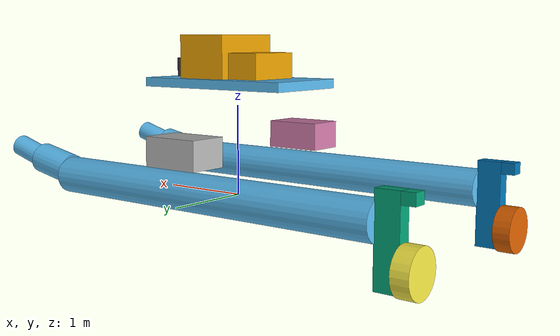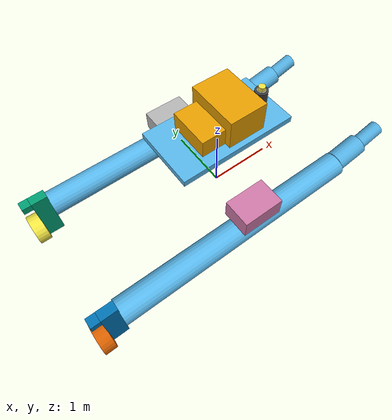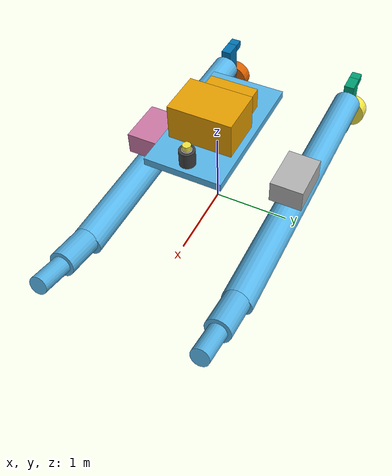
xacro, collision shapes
<?xml version='1.0' encoding='utf-8'?>
<robot name="wamv" xmlns:xacro="http://ros.org/wiki/xacro">

  <xacro:property name="user_path" value="file:///home/gelatocotonato/LabMec2025/src/wamv_gazebo/urdf/meshes"/>

  <!-- BASE FOOTPRINT -->
  <link name="base_footprint" />

  <!-- BASE LINK -->
  <link name="base_link">
    <inertial>
      <origin xyz="0 0 0" rpy="0 0 0" />
      <mass value="180.0" />
      <inertia ixx="120.0" ixy="0.0" ixz="0.0" iyy="393.0" iyz="0.0" izz="446.0" />
    </inertial>

    <visual>
      <origin xyz="0 0 0" rpy="0 0 0" />
      <geometry>
        <mesh filename="${user_path}/wamv/WAM-V-Base.dae" />
      </geometry>
    </visual>

    <collision>
      <origin xyz="0 0 1.25" rpy="0 0 0" />
      <geometry>
        <box size="1.85 1 0.1" />
      </geometry>
    </collision>

    <collision>
      <origin xyz="-0.4 1.03 0.2" rpy="0 1.57 0" />
      <geometry>
        <cylinder length="4" radius="0.2" />
      </geometry>
    </collision>

    <collision>
      <origin xyz="1.85 1.03 0.3" rpy="0 1.38 0" />
      <geometry>
        <cylinder length="0.5" radius="0.17" />
      </geometry>
    </collision>

    <collision>
      <origin xyz="2.3 1.03 0.4" rpy="0 1.3 0" />
      <geometry>
        <cylinder length="0.45" radius="0.12" />
      </geometry>
    </collision>

    <collision>
      <origin xyz="-0.4 -1.03 0.2" rpy="0 1.57 0" />
      <geometry>
        <cylinder length="4" radius="0.2" />
      </geometry>
    </collision>

    <collision>
      <origin xyz="1.85 -1.03 0.3" rpy="0 1.38 0" />
      <geometry>
        <cylinder length="0.5" radius="0.17" />
      </geometry>
    </collision>

    <collision>
      <origin xyz="2.3 -1.03 0.4" rpy="0 1.3 0" />
      <geometry>
        <cylinder length="0.45" radius="0.12" />
      </geometry>
    </collision>
  </link>

  <joint name="base_footprint_joint" type="fixed">
    <parent link="base_footprint" />
    <child link="base_link" />
    <origin xyz="0 0 0" rpy="0 0 0" />
  </joint>

  <!-- WAM-V LEFT PART -->

  <!-- ENGINE -->
  <link name="left_engine_link">

    <inertial>
      <origin xyz="0 0 0" rpy="0 0 0" />
      <mass value="15.0" />
      <inertia ixx="0.889245" ixy="0.0" ixz="0.0" iyy="0.811125" iyz="0.0" izz="0.078125" />
    </inertial>

    <visual>
      <origin xyz="0 0 0" rpy="0 0 0" />
      <geometry>
        <mesh filename="${user_path}/wamv/engine.dae" />
      </geometry>
    </visual>

    <collision>
      <origin xyz="-0.145 0 -0.27" rpy="0 0 0" />
      <geometry>
        <box size="0.25 0.15 0.9" />
      </geometry>
    </collision>

    <collision>
      <origin xyz="-0.34 0 0.12" rpy="0 0 0" />
      <geometry>
        <box size="0.14 0.15 0.12" />
      </geometry>
    </collision>
  </link>

  <joint name="left_chassis_engine_joint" type="revolute">
    <axis xyz="0 0 1" />
    <parent link="base_link" />
    <child link="left_engine_link" />
    <limit effort="10" lower="-1.57" upper="1.57" velocity="10" />
    <origin xyz="-2.373776 1.027135 0.318237" rpy="0 0 0" />
  </joint>

  <!-- PROPELLER -->
  <link name="left_propeller_link">

    <inertial>
      <origin xyz="0 0 0" rpy="0 0 0" />
      <mass value="0.5" />
      <inertia ixx="0.008545" ixy="0.0" ixz="0.0"
               iyy="0.008545" iyz="0.0"
               izz="0.0144" />
    </inertial>

    <visual>
      <origin xyz="0 0 0" rpy="0 0 0" />
      <geometry>
        <mesh filename="${user_path}/wamv/propeller.dae" />
      </geometry>
    </visual>

    <collision>
      <origin xyz="-0.08 0 0" rpy="0 1.57 0" />
      <geometry>
        <cylinder length="0.18" radius="0.24" />
      </geometry>
    </collision>
  </link>

  <joint name="left_engine_propeller_joint" type="revolute">
    <axis xyz="1 0 0" />
    <parent link="left_engine_link" />
    <child link="left_propeller_link" />
    <limit effort="20" lower="-999999" upper="999999" velocity="15" />
    <dynamics damping="0.05" friction="0.05" spring_reference="0" spring_stiffness="0" />
    <origin xyz="-0.278156 0 -0.509371" rpy="0 0 0" />
  </joint>

  <!-- WAM-V RIGHT PART -->

  <!-- ENGINE -->
  <link name="right_engine_link">

    <inertial>
      <origin xyz="0 0 0" rpy="0 0 0" />
      <mass value="15.0" />
      <inertia ixx="0.889245" ixy="0.0" ixz="0.0"
               iyy="0.811125" iyz="0.0"
               izz="0.078125" />
    </inertial>

    <visual>
      <origin xyz="0 0 0" rpy="0 0 0" />
      <geometry>
        <mesh filename="${user_path}/wamv/engine.dae" />
      </geometry>
    </visual>

    <collision>
      <origin xyz="-0.145 0 -0.27" rpy="0 0 0" />
      <geometry>
        <box size="0.25 0.15 0.9" />
      </geometry>
    </collision>

    <collision>
      <origin xyz="-0.34 0 0.12" rpy="0 0 0" />
      <geometry>
        <box size="0.14 0.15 0.12" />
      </geometry>
    </collision>
  </link>

  <joint name="right_chassis_engine_joint" type="revolute">
    <axis xyz="0 0 1" />
    <parent link="base_link" />
    <child link="right_engine_link" />
    <limit effort="10" lower="-1.57" upper="1.57" velocity="2" />
    <origin xyz="-2.373776 -1.027135 0.318237" rpy="0 0 0" />
  </joint>

  <!-- PROPELLER -->
  <link name="right_propeller_link">

    <inertial>
      <origin xyz="0 0 0" rpy="0 0 0"/>
      <mass value="0.5"/>
      <inertia ixx="0.008545" ixy="0.0" ixz="0.0"
               iyy="0.008545" iyz="0.0"
               izz="0.0144"/>
    </inertial>

    <visual>
      <origin xyz="0 0 0" rpy="0 0 0"/>
      <geometry>
        <mesh filename="${user_path}/wamv/propeller.dae"/>
      </geometry>
    </visual>

    <collision>
      <origin xyz="-0.08 0 0" rpy="0 1.57 0"/>
      <geometry>
        <cylinder length="0.18" radius="0.24"/>
      </geometry>
    </collision>
  </link>

  <joint name="right_engine_propeller_joint" type="revolute">
    <axis xyz="1 0 0" />
    <parent link="right_engine_link" />
    <child link="right_propeller_link" />
    <limit effort="20" lower="-999999" upper="999999" velocity="15" />
    <dynamics damping="0.05" friction="0.05" spring_reference="0" spring_stiffness="0" />
    <origin xyz="-0.278156 0 -0.509371" rpy="0 0 0" />
  </joint>

  <!-- WAM-V LOAD -->

  <!-- BATTERIES -->
  <link name="battery_dx_link">

    <inertial>
      <origin xyz="-0.02 0 0.155" rpy="0 0 0"/>
      <mass value="23.5"/>
      <inertia
        ixx="0.5015291666666667" ixy="0" ixz="0"
        iyy="0.8931958333333333" iyz="0"
        izz="1.0183333333333333"/>
    </inertial>

    <visual>
      <origin xyz="0 0 0" rpy="0 0 0" />
      <geometry>
        <mesh filename="${user_path}/battery/battery.dae"/>
      </geometry>
    </visual>

    <collision>
      <origin xyz="-0.02 0 0.155" rpy="0 0 0"/>
      <geometry>
        <box size="0.64 0.44 0.31"/>
      </geometry>
    </collision>
  </link>

  <joint name="battery_dx_joint" type="fixed">
    <parent link="base_link" />
    <child link="battery_dx_link" />
    <origin xyz="-0.13 -1.029 0.448" rpy="0 0 0" />
  </joint>

  <link name="battery_sx_link">

    <inertial>
      <origin xyz="-0.02 0 0.155" rpy="0 0 0"/>
      <mass value="23.5"/>
      <inertia
        ixx="0.50152917"          ixy="0" ixz="0"
        iyy="0.8931958333333333"  iyz="0"
        izz="1.0183333333333333"/>
    </inertial>

    <visual>
      <origin xyz="0 0 0" rpy="0 0 0"/>
      <geometry>
        <mesh filename="${user_path}/battery/battery.dae"/>
      </geometry>
    </visual>

    <collision>
      <origin xyz="-0.02 0 0.155" rpy="0 0 0"/>
      <geometry>
        <box size="0.64 0.44 0.31"/>
      </geometry>
    </collision>
  </link>

  <joint name="battery_sx_joint" type="fixed">
    <parent link="base_link" />
    <child link="battery_sx_link" />
    <origin xyz="-0.13 1.029 0.448" rpy="0 0 0" />
  </joint>

  <!-- CPU CASES -->
  <link name="cpu_cases_link">

    <inertial>
      <origin xyz="0.1 0 0.235" rpy="0 0 0"/>
      <mass value="20"/>
      <inertia
        ixx="1.51633333333333" ixy="0" ixz="0"
        iyy="1.93633333333333" iyz="0"
        izz="2.71633333333333"/>
    </inertial>

    <visual>
      <origin xyz="0 0 0" rpy="0 0 0"/>
      <geometry>
        <mesh filename="${user_path}/cpu_cases/cpu_cases.dae"/>
      </geometry>
    </visual>

    <collision>
      <origin xyz="0.1 0 0.235" rpy="0 0 0"/>
      <geometry>
        <box size="0.595 0.83 0.47"/>
      </geometry>
    </collision>

    <collision>
      <origin xyz="-0.387 0 0.14" rpy="0 0 0"/>
      <geometry>
        <box size="0.375 0.64 0.28"/>
      </geometry>
    </collision>
  </link>

  <joint name="cpu_cases_joint" type="fixed">
    <parent link="base_link"/>
    <child link="cpu_cases_link"/>
    <origin xyz="0.073 0 1.3" rpy="0 0 0" />
  </joint>

  <!-- TRIPOD -->
  <link name="tripod_legs_link">
    <inertial>
      <origin xyz="0 0 0.11" rpy="0 0 0"/>
      <mass value="0.35"/>
      <inertia
        ixx="0.0008" iyy="0.0008" izz="0.0005"
        ixy="0.0"    ixz="0.0"
        iyz="0.0"/>
    </inertial>

    <visual name="tripod_legs_visual">
      <origin xyz="0 0 0" rpy="0 0 0"/>
      <geometry>
        <mesh filename="${user_path}/tripod/legs.dae" />
      </geometry>
      <material name="dark_gray_metal">
        <color rgba="0.25 0.25 0.25 1"/>
      </material>
    </visual>

    <collision name="tripod_legs_collision">
      <origin xyz="0 0 0.11" rpy="0 0 0"/>
      <geometry>
        <cylinder length="0.218" radius="0.1"/>
      </geometry>
    </collision>
  </link>

  <joint name="tripod_legs_joint" type="fixed">
    <parent link="base_link" />
    <child link="tripod_legs_link" />
    <origin xyz="0.77 0 1.29" rpy="0 0 0" />
  </joint>

  <link name="tripod_ring_link">
    <inertial>
      <origin xyz="0 0 0.005" rpy="0 0 0"/>
      <mass value="0.15"/>
      <inertia
        ixx="0.00015" iyy="0.00015" izz="0.0001"
        ixy="0.0"     ixz="0.0"
        iyz="0.0"/>
    </inertial>

    <visual name="tripod_ring_visual">
      <origin xyz="0 0 0" rpy="0 0 0"/>
      <geometry>
        <mesh filename="${user_path}/tripod/ring.dae"/>
      </geometry>
      <material name="gray_metal">
        <color rgba="0.65 0.65 0.70 1"/>
      </material>
    </visual>

    <collision name="tripod_ring_collision">
      <origin xyz="0 0 0.005" rpy="0 0 0"/>
      <geometry>
        <cylinder length="0.01" radius="0.068"/>
      </geometry>
    </collision>
  </link>

  <joint name="tripod_ring_joint" type="fixed">
    <parent link="tripod_legs_link" />
    <child link="tripod_ring_link" />
    <origin xyz="0 0 0.218" rpy="0 0 0" />
  </joint>

  <link name="lidar_link">
    <inertial>
      <origin xyz="0 0 0.036" rpy="0 0 0"/>
      <mass value="1.2"/>
      <inertia
        ixx="0.001" ixy="0.0" ixz="0.0"
        iyy="0.001" iyz="0.0"
        izz="0.001"/>
    </inertial>

    <visual name="lidar_visual">
      <origin xyz="0 0 0" rpy="0 0 0"/>
      <geometry>
        <mesh filename="${user_path}/lidar/lidar_3d_v1.dae"/>
      </geometry>
    </visual>

    <collision name="lidar_collision">
      <origin xyz="0 0 0.036" rpy="0 0 0"/>
      <geometry>
        <cylinder length="0.072" radius="0.0515"/>
      </geometry>
    </collision>
  </link>

  <joint name="lidar_joint" type="fixed">
    <parent link="tripod_ring_link" />
    <child link="lidar_link" />
    <origin xyz="0 0 0.01" rpy="0 0 0" />
  </joint>

  <!-- SENSORS -->

  <!-- LIDAR -->
  <gazebo reference="lidar_link">
    <sensor name="gpu_lidar" type="gpu_lidar">
      <pose>0 0 0.036 0 0 0</pose>
      <update_rate>15</update_rate>
      <topic>scan</topic>
      <always_on>1</always_on>
      <visualize>true</visualize>
      <gz_frame_id>lidar_link</gz_frame_id>
      <ray>
        <scan>
          <horizontal>
            <samples>640</samples>
            <resolution>1</resolution>
            <min_angle>-1.570796</min_angle>
            <max_angle>1.570796</max_angle>
          </horizontal>
          <vertical>
            <samples>64</samples>
            <resolution>1</resolution>
            <min_angle>-0.26179</min_angle>
            <max_angle>0.26179</max_angle>
          </vertical>
        </scan>
        <range>
          <min>0.08</min>
          <max>70.0</max>
          <resolution>0.05</resolution>
        </range>
        <noise>
          <type>gaussian</type>
          <mean>0.0</mean>
          <stddev>0.015</stddev>
        </noise>
      </ray>
    </sensor>
  </gazebo>

  <!-- GPS -->
  <gazebo reference="lidar_link">
    <sensor name="gps_sensor" type="gps">
      <always_on>true</always_on>
      <update_rate>5</update_rate>
      <visualize>true</visualize>
      <topic>fix</topic>
      <gz_frame_id>lidar_link</gz_frame_id>
      <gps>
        <position_sensing>
          <horizontal>
            <noise type="gaussian">
              <mean>0.0</mean>
              <stddev>0.000001</stddev>
            </noise>
          </horizontal>
          <vertical>
            <noise type="gaussian">
              <mean>0.0</mean>
              <stddev>0.000001</stddev>
            </noise>
          </vertical>
        </position_sensing>
      </gps>
    </sensor>
  </gazebo>

  <!-- IMU -->
  <gazebo reference="cpu_cases_link">
    <sensor name="imu_sensor" type="imu">
      <update_rate>50</update_rate>
      <visualize>true</visualize>
      <topic>imu</topic>
      <gz_frame_id>cpu_cases_link</gz_frame_id>

      <imu>
        <angular_velocity>
          <x>
            <noise type="gaussian">
              <mean>0</mean>
              <stddev>0.008</stddev>
              <bias_mean>0.0005</bias_mean>
              <bias_stddev>0.003</bias_stddev>
              <dynamic_bias_stddev>0.000015</dynamic_bias_stddev>
              <dynamic_bias_correlation_time>300.0</dynamic_bias_correlation_time>
              <precision>0.0003</precision>
            </noise>
          </x>
          <y>
            <noise type="gaussian">
              <mean>0</mean>
              <stddev>0.008</stddev>
              <bias_mean>0.0005</bias_mean>
              <bias_stddev>0.003</bias_stddev>
              <dynamic_bias_stddev>0.000015</dynamic_bias_stddev>
              <dynamic_bias_correlation_time>300.0</dynamic_bias_correlation_time>
              <precision>0.0003</precision>
            </noise>
          </y>
          <z>
            <noise type="gaussian">
              <mean>0</mean>
              <stddev>0.008</stddev>
              <bias_mean>0.0005</bias_mean>
              <bias_stddev>0.003</bias_stddev>
              <dynamic_bias_stddev>0.000015</dynamic_bias_stddev>
              <dynamic_bias_correlation_time>300.0</dynamic_bias_correlation_time>
              <precision>0.0003</precision>
            </noise>
          </z>
        </angular_velocity>

        <linear_acceleration>
          <x>
            <noise type="gaussian">
              <mean>0</mean>
              <stddev>0.02</stddev>
              <bias_mean>0.04</bias_mean>
              <bias_stddev>0.006</bias_stddev>
              <dynamic_bias_stddev>0.0003</dynamic_bias_stddev>
              <dynamic_bias_correlation_time>150.0</dynamic_bias_correlation_time>
              <precision>0.006</precision>
            </noise>
          </x>
          <y>
            <noise type="gaussian">
              <mean>0</mean>
              <stddev>0.02</stddev>
              <bias_mean>0.04</bias_mean>
              <bias_stddev>0.006</bias_stddev>
              <dynamic_bias_stddev>0.0003</dynamic_bias_stddev>
              <dynamic_bias_correlation_time>150.0</dynamic_bias_correlation_time>
              <precision>0.006</precision>
            </noise>
          </y>
          <z>
            <noise type="gaussian">
              <mean>0</mean>
              <stddev>0.02</stddev>
              <bias_mean>0.04</bias_mean>
              <bias_stddev>0.006</bias_stddev>
              <dynamic_bias_stddev>0.0003</dynamic_bias_stddev>
              <dynamic_bias_correlation_time>150.0</dynamic_bias_correlation_time>
              <precision>0.006</precision>
            </noise>
          </z>
        </linear_acceleration>
      </imu>
    </sensor>
  </gazebo>

  <!-- PLUGINS -->
  <gazebo>
    <plugin name="gz::sim::systems::Thruster" filename="gz-sim-thruster-system">
      <joint_name>left_engine_propeller_joint</joint_name>
      <thrust_coefficient>0.004422</thrust_coefficient>
      <fluid_density>1000</fluid_density>
      <propeller_diameter>0.2</propeller_diameter>
      <velocity_control>true</velocity_control>
    </plugin>
  </gazebo>

  <gazebo>
    <plugin name="gz::sim::systems::JointPositionController"
            filename="gz-sim-joint-position-controller-system">
      <joint_name>left_chassis_engine_joint</joint_name>
      <use_velocity_commands>true</use_velocity_commands>
      <topic>/wamv/left/thruster/joint/cmd_pos</topic>
    </plugin>
  </gazebo>

  <gazebo>
    <plugin
      filename="gz-sim-thruster-system"
      name="gz::sim::systems::Thruster">
      <joint_name>right_engine_propeller_joint</joint_name>
      <thrust_coefficient>0.004422</thrust_coefficient>
      <fluid_density>1000</fluid_density>
      <propeller_diameter>0.2</propeller_diameter>
      <velocity_control>true</velocity_control>
    </plugin>
  </gazebo>

  <gazebo>
    <plugin
      filename="gz-sim-joint-position-controller-system"
      name="gz::sim::systems::JointPositionController">
      <joint_name>right_chassis_engine_joint</joint_name>
      <use_velocity_commands>true</use_velocity_commands>
      <topic>/wamv/right/thruster/joint/cmd_pos</topic>
    </plugin>
  </gazebo>

  <gazebo>
    <plugin name="wamv_gazebo::Surface" filename="libSurface.so">
      <link_name>base_footprint</link_name>
      <hull_length>4.9</hull_length>
      <hull_radius>0.213</hull_radius>
      <fluid_level>0</fluid_level>
      <points>
        <point>0.6 1.03 0</point>
        <point>-1.4 1.03 0</point>
      </points>
      <wavefield>
        <topic>/wamv_gazebo/wavefield/parameters</topic>
      </wavefield>
    </plugin>
  </gazebo>

  <gazebo>
    <plugin name="wamv_gazebo::Surface" filename="libSurface.so">
      <link_name>base_footprint</link_name>
      <hull_length>4.9</hull_length>
      <hull_radius>0.213</hull_radius>
      <fluid_level>0</fluid_level>
      <points>
        <point>0.6 -1.03 0</point>
        <point>-1.4 -1.03 0</point>
      </points>
      <wavefield>
        <topic>/wamv_gazebo/wavefield/parameters</topic>
      </wavefield>
    </plugin>
  </gazebo>

  <gazebo>
    <plugin name="gz::sim::systems::Hydrodynamics" filename="gz-sim-hydrodynamics-system">
      <link_name>base_footprint</link_name>
      <xDotU>0.0</xDotU>
      <yDotV>0.0</yDotV>
      <nDotR>0.0</nDotR>
      <xU>-51.3</xU>
      <xAbsU>-72.4</xAbsU>
      <yV>-40.0</yV>
      <yAbsV>0.0</yAbsV>
      <zW>-500.0</zW>
      <kP>-50.0</kP>
      <mQ>-50.0</mQ>
      <nR>-400.0</nR>
      <nAbsR>0.0</nAbsR>
    </plugin>
  </gazebo>

  <gazebo>
    <plugin filename="gz-sim-odometry-publisher-system" name="gz::sim::systems::OdometryPublisher">
      <odom_topic>/odom</odom_topic>
      <odom_frame>odom</odom_frame>
      <robot_base_frame>base_footprint</robot_base_frame>
      <dimension>2</dimension>
      <odom_publish_frequency>20.0</odom_publish_frequency>
    </plugin>
  </gazebo>
</robot>
